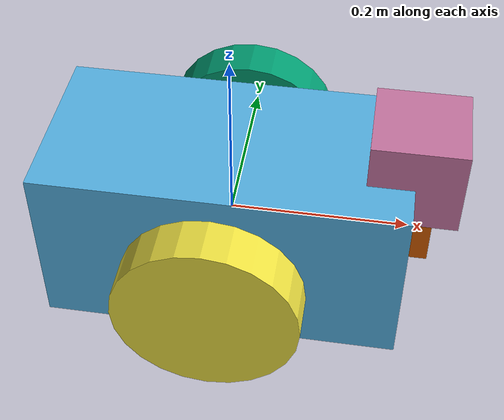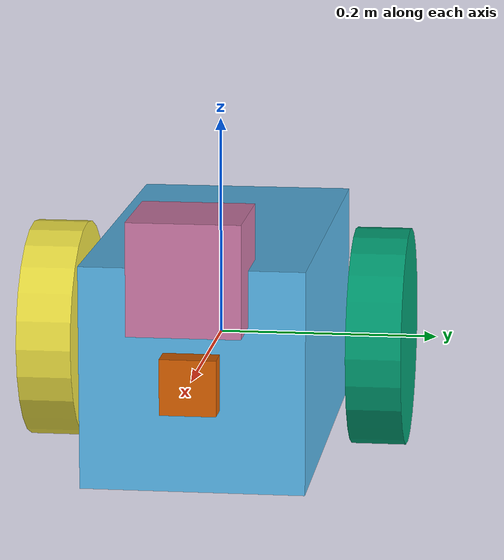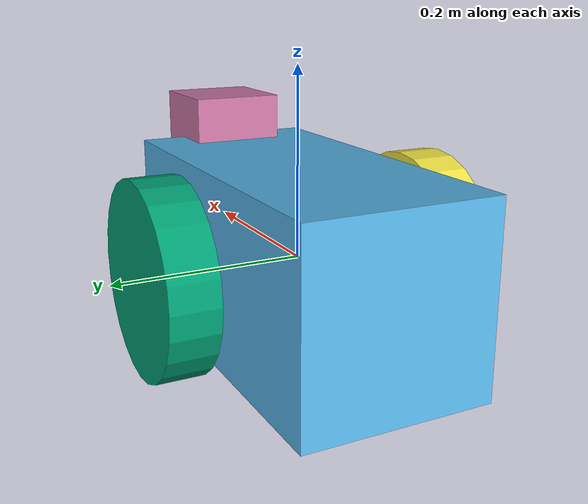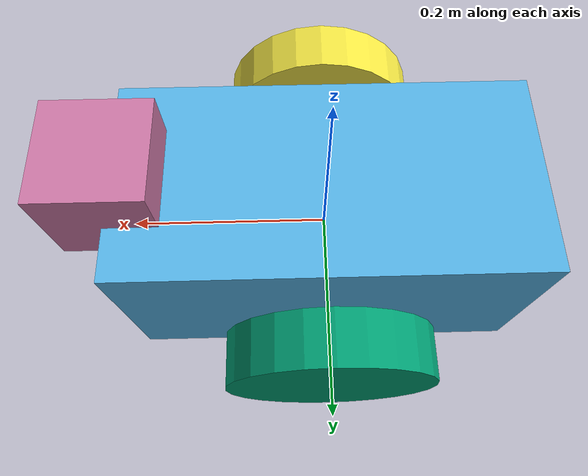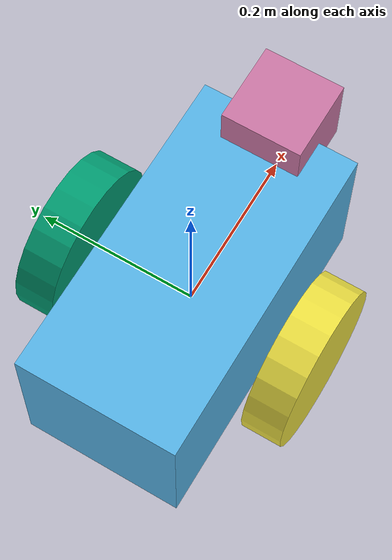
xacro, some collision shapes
<?xml version='1.0'?>

<robot name="udacity_bot" xmlns:xacro="http://www.ros.org/wiki/xacro">
  <xacro:include filename="$(find slam_project)/urdf/udacity_bot.gazebo" />
  <xacro:property name="PI" value="3.1415926535897931" />
  <link name="base_footprint"></link>

  <joint name="robot_footprint_joint" type="fixed">
    <origin xyz="0 0 0" rpy="0 0 0" />
    <parent link="base_footprint"/>
    <child link="chassis" />
  </joint>

  <link name='chassis'>
    <pose>0 0 0.1 0 0 0</pose>

    <inertial>
      <mass value="15.0"/>
      <origin xyz="0.0 0 0" rpy=" 0 0 0"/>
      <inertia
          ixx="0.1" ixy="0" ixz="0"
          iyy="0.1" iyz="0"
          izz="0.1"
      />
    </inertial>

    <collision name='collision'>
      <origin xyz="0 0 0" rpy=" 0 0 0"/>
      <geometry>
        <box size=".4 .2 .2"/>
      </geometry>
    </collision>

    <visual name='chassis_visual'>
      <origin xyz="0 0 0" rpy=" 0 0 0"/>
      <geometry>
        <box size=".4 .2 .2"/>
      </geometry>
    </visual>

    <collision name='back_caster_collision'>
      <origin xyz="-0.15 0 -0.05" rpy=" 0 0 0"/>
      <geometry>
        <sphere radius="0.049"/>
      </geometry>
      <surface>
        <friction>
          <ode>
            <mu>0</mu>
            <mu2>0</mu2>
            <slip1>1.0</slip1>
            <slip2>1.0</slip2>
          </ode>
        </friction>
      </surface>
    </collision>

    <visual name='back_caster_visual'>
      <origin xyz="-0.15 0 -0.05" rpy=" 0 0 0"/>
      <geometry>
        <sphere radius="0.05"/>
      </geometry>
    </visual>

    <collision name='front_caster_collision'>
      <origin xyz="0.15 0 -0.05" rpy=" 0 0 0"/>
      <geometry>
        <sphere radius="0.049"/>
      </geometry>
      <surface>
        <friction>
          <ode>
            <mu>0</mu>
            <mu2>0</mu2>
            <slip1>1.0</slip1>
            <slip2>1.0</slip2>
          </ode>
        </friction>
      </surface>
    </collision>

    <visual name='front_caster_visual'>
      <origin xyz="0.15 0 -0.05" rpy=" 0 0 0"/>
      <geometry>
        <sphere radius="0.05"/>
      </geometry>
    </visual>

  </link>
  <link name='left_wheel'>

    <inertial>
      <mass value="5.0"/>
      <origin xyz="0.0 0 0" rpy=" 0 ${PI/2} ${PI/2}"/>
      <inertia
          ixx="0.1" ixy="0" ixz="0"
          iyy="0.1" iyz="0"
          izz="0.1"
      />
    </inertial>

    <collision name='collision'>
      <origin xyz="0 0 0" rpy=" 0 ${PI/2} ${PI/2}"/>
      <geometry>
        <cylinder length=".05" radius="0.1"/>
      </geometry>
    </collision>

    <visual name='left_wheel_visual'>
      <origin xyz="0 0 0" rpy=" 0 ${PI/2} ${PI/2}"/>
      <geometry>
        <cylinder length=".05" radius="0.1"/>
      </geometry>
    </visual>
  </link>
  <link name='right_wheel'>

    <inertial>
      <mass value="5.0"/>
      <origin xyz="0.0 0 0" rpy=" 0 ${PI/2} ${PI/2}"/>
      <inertia
          ixx="0.1" ixy="0" ixz="0"
          iyy="0.1" iyz="0"
          izz="0.1"
      />
    </inertial>

    <collision name='collision'>
      <origin xyz="0 0 0" rpy=" 0 ${PI/2} ${PI/2}"/>
      <geometry>
        <cylinder length=".05" radius="0.1"/>
      </geometry>
    </collision>

    <visual name='right_wheel_visual'>
      <origin xyz="0 0 0" rpy=" 0 ${PI/2} ${PI/2}"/>
      <geometry>
        <cylinder length=".05" radius="0.1"/>
      </geometry>
    </visual>
  </link>

  <joint type="continuous" name="left_wheel_hinge">
    <origin xyz="0 0.15 0" rpy="0 0 0"/>
    <child link="left_wheel"/>
    <parent link="chassis"/>
    <axis xyz="0 1 0" rpy="0 0 0"/>
    <limit effort="10000" velocity="1000"/>
    <joint_properties damping="1.0" friction="1.0"/>
  </joint>

  <joint type="continuous" name="right_wheel_hinge">
    <origin xyz="0 -0.15 0" rpy="0 0 0"/>
    <child link="right_wheel"/>
    <parent link="chassis"/>
    <axis xyz="0 1 0" rpy="0 0 0"/>
    <limit effort="10000" velocity="1000"/>
    <joint_properties damping="1.0" friction="1.0"/>
  </joint>

  <link name="camera_rgbd_frame"></link>
  <joint name="camera_footprint_joint" type="fixed">
    <origin xyz="0 0 0" rpy="${-PI/2} 0 ${-PI/2}" />
    <parent link="camera"/>
    <child link="camera_rgbd_frame" />
  </joint>
  <link name="camera">
  <inertial>
    <mass value="0.1"/>
    <origin xyz="0 0 0" rpy="0 0 0"/>
    <inertia ixx="1e-6" ixy="0" ixz="0" iyy="1e-6" iyz="0" izz="1e-6"/>
  </inertial>
  <collision name='collision'>
    <origin xyz="0 0 0" rpy="0 0 0"/>
    <geometry>
      <box size="0.05 0.05 0.05"/>
    </geometry>
  </collision>
  <visual name='camera'>
    <origin xyz="0 0 0" rpy="0 0 0"/>
    <geometry>
      <box size="0.05 0.05 0.05"/>
    </geometry>
  </visual>
  </link>

     <link name="hokuyo">
  <inertial>
    <mass value="0.1"/>
    <origin xyz="0 0 0" rpy="0 0 0"/>
    <inertia ixx="1e-6" ixy="0" ixz="0" iyy="1e-6" iyz="0" izz="1e-6"/>
  </inertial>
  <collision>
    <origin xyz="0 0 0" rpy="0 0 0"/>
    <geometry>
      <box size="0.1 0.1 0.1"/>
    </geometry>
  </collision>
  <visual name="hokuyo">
    <origin xyz="0 0 0" rpy="0 0 0"/>
    <geometry>
      <mesh filename="package://slam_project/meshes/hokuyo.dae"/>
    </geometry>
  </visual>
  </link>

  <joint type="fixed" name="camera_joint">
    <origin xyz="0.2 0 0" rpy="0 0 0"/>
    <child link="camera"/>
    <parent link="chassis"/>
  </joint>
 <link name="hokuyo_frame"></link>
  <joint name="hokuyo_frame_joint" type="fixed">
    <origin xyz="0 0 0" rpy="0 0 0" />
    <parent link="hokuyo"/>
    <child link="hokuyo_frame" />
  </joint>
  <joint type="fixed" name="hokuyo_joint">
    <origin xyz="0.2 0 0.1" rpy="0 0 0"/>
    <child link="hokuyo"/>
    <parent link="chassis"/>
  </joint>

</robot>
